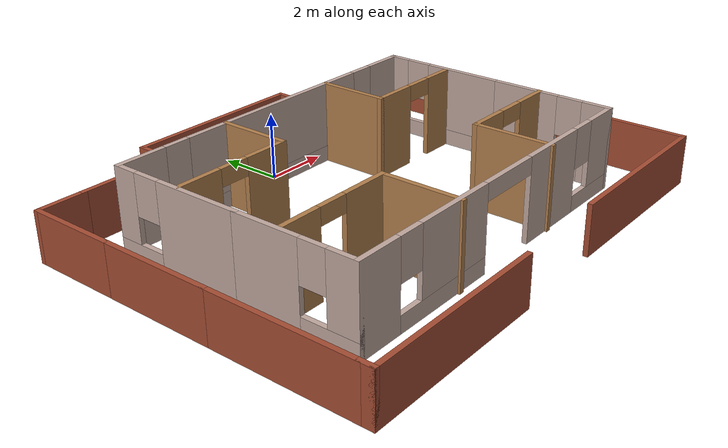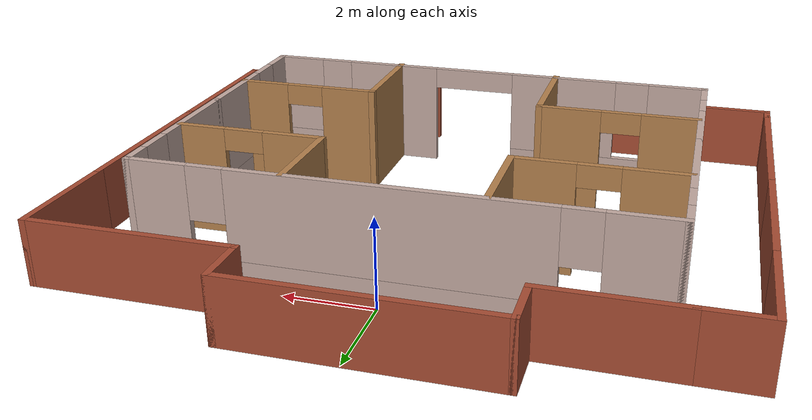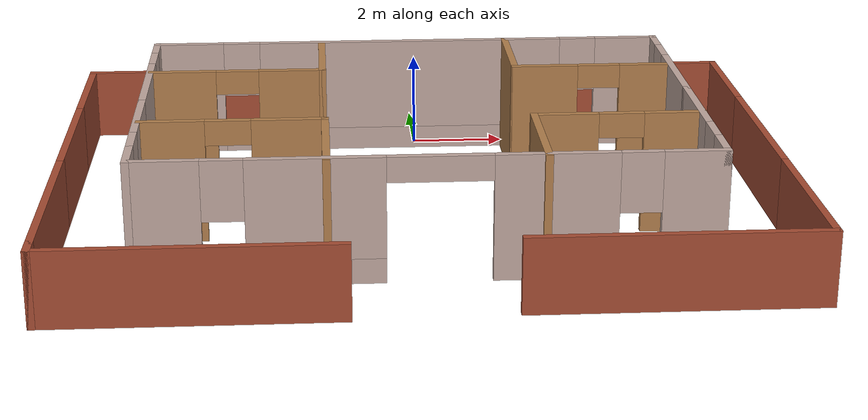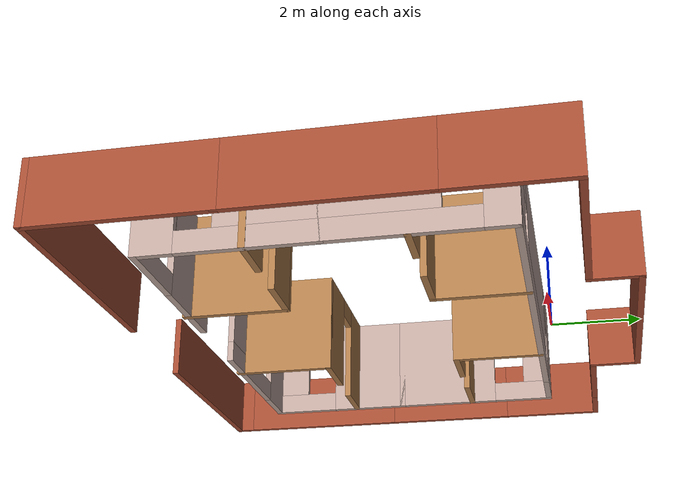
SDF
<?xml version='1.0'?>
<sdf version='1.6'>
  <model name='my_home'>
    <pose frame=''>-0.13 -3.875 0 0 -0 0</pose>
    <link name='Wall_0'>
      <pose frame=''>-5.59 1.475 0 0 -0 1.5708</pose>
      <visual name='Wall_0_Visual_0'>
        <pose frame=''>-0.7725 0 1.25 0 -0 0</pose>
        <geometry>
          <box>
            <size>2.705 0.15 2.5</size>
          </box>
        </geometry>
        <material>
          <script>
            <uri>file://media/materials/scripts/gazebo.material</uri>
            <name>Gazebo/Grey</name>
          </script>
          <ambient>0.760784 0.662745 0.627451 1</ambient>
        </material>
        <meta>
          <layer>0</layer>
        </meta>
      </visual>
      <collision name='Wall_0_Collision_0'>
        <geometry>
          <box>
            <size>2.705 0.15 2.5</size>
          </box>
        </geometry>
        <pose frame=''>-0.7725 0 1.25 0 -0 0</pose>
      </collision>
      <visual name='Wall_0_Visual_1'>
        <pose frame=''>1.3525 0 0.25 0 -0 0</pose>
        <geometry>
          <box>
            <size>1.545 0.15 0.5</size>
          </box>
        </geometry>
        <material>
          <script>
            <uri>file://media/materials/scripts/gazebo.material</uri>
            <name>Gazebo/Grey</name>
          </script>
          <ambient>0.760784 0.662745 0.627451 1</ambient>
        </material>
        <meta>
          <layer>0</layer>
        </meta>
      </visual>
      <collision name='Wall_0_Collision_1'>
        <geometry>
          <box>
            <size>1.545 0.15 0.5</size>
          </box>
        </geometry>
        <pose frame=''>1.3525 0 0.25 0 -0 0</pose>
      </collision>
      <visual name='Wall_0_Visual_2'>
        <pose frame=''>1.7525 0 1.5 0 -0 0</pose>
        <geometry>
          <box>
            <size>0.745 0.15 2</size>
          </box>
        </geometry>
        <material>
          <script>
            <uri>file://media/materials/scripts/gazebo.material</uri>
            <name>Gazebo/Grey</name>
          </script>
          <ambient>0.760784 0.662745 0.627451 1</ambient>
        </material>
        <meta>
          <layer>0</layer>
        </meta>
      </visual>
      <collision name='Wall_0_Collision_2'>
        <geometry>
          <box>
            <size>0.745 0.15 2</size>
          </box>
        </geometry>
        <pose frame=''>1.7525 0 1.5 0 -0 0</pose>
      </collision>
      <visual name='Wall_0_Visual_3'>
        <pose frame=''>0.98 0 1.9 0 -0 0</pose>
        <geometry>
          <box>
            <size>0.8 0.15 1.2</size>
          </box>
        </geometry>
        <material>
          <script>
            <uri>file://media/materials/scripts/gazebo.material</uri>
            <name>Gazebo/Grey</name>
          </script>
          <ambient>0.760784 0.662745 0.627451 1</ambient>
        </material>
        <meta>
          <layer>0</layer>
        </meta>
      </visual>
      <collision name='Wall_0_Collision_3'>
        <geometry>
          <box>
            <size>0.8 0.15 1.2</size>
          </box>
        </geometry>
        <pose frame=''>0.98 0 1.9 0 -0 0</pose>
      </collision>
    </link>
    <link name='Wall_1'>
      <pose frame=''>-0.04 3.525 0 0 -0 0</pose>
      <visual name='Wall_1_Visual_0'>
        <pose frame=''>-4.8575 0 1.25 0 -0 0</pose>
        <geometry>
          <box>
            <size>1.535 0.15 2.5</size>
          </box>
        </geometry>
        <material>
          <script>
            <uri>file://media/materials/scripts/gazebo.material</uri>
            <name>Gazebo/Grey</name>
          </script>
          <ambient>0.760784 0.662745 0.627451 1</ambient>
        </material>
        <meta>
          <layer>0</layer>
        </meta>
      </visual>
      <collision name='Wall_1_Collision_0'>
        <geometry>
          <box>
            <size>1.535 0.15 2.5</size>
          </box>
        </geometry>
        <pose frame=''>-4.8575 0 1.25 0 -0 0</pose>
      </collision>
      <visual name='Wall_1_Visual_1'>
        <pose frame=''>0.7675 0 0.25 0 -0 0</pose>
        <geometry>
          <box>
            <size>9.715 0.15 0.5</size>
          </box>
        </geometry>
        <material>
          <script>
            <uri>file://media/materials/scripts/gazebo.material</uri>
            <name>Gazebo/Grey</name>
          </script>
          <ambient>0.760784 0.662745 0.627451 1</ambient>
        </material>
        <meta>
          <layer>0</layer>
        </meta>
      </visual>
      <collision name='Wall_1_Collision_1'>
        <geometry>
          <box>
            <size>9.715 0.15 0.5</size>
          </box>
        </geometry>
        <pose frame=''>0.7675 0 0.25 0 -0 0</pose>
      </collision>
      <visual name='Wall_1_Visual_2'>
        <pose frame=''>0.07 0 1.5 0 -0 0</pose>
        <geometry>
          <box>
            <size>6.72 0.15 2</size>
          </box>
        </geometry>
        <material>
          <script>
            <uri>file://media/materials/scripts/gazebo.material</uri>
            <name>Gazebo/Grey</name>
          </script>
          <ambient>0.760784 0.662745 0.627451 1</ambient>
        </material>
        <meta>
          <layer>0</layer>
        </meta>
      </visual>
      <collision name='Wall_1_Collision_2'>
        <geometry>
          <box>
            <size>6.72 0.15 2</size>
          </box>
        </geometry>
        <pose frame=''>0.07 0 1.5 0 -0 0</pose>
      </collision>
      <visual name='Wall_1_Visual_3'>
        <pose frame=''>4.9275 0 1.5 0 -0 0</pose>
        <geometry>
          <box>
            <size>1.395 0.15 2</size>
          </box>
        </geometry>
        <material>
          <script>
            <uri>file://media/materials/scripts/gazebo.material</uri>
            <name>Gazebo/Grey</name>
          </script>
          <ambient>0.760784 0.662745 0.627451 1</ambient>
        </material>
        <meta>
          <layer>0</layer>
        </meta>
      </visual>
      <collision name='Wall_1_Collision_3'>
        <geometry>
          <box>
            <size>1.395 0.15 2</size>
          </box>
        </geometry>
        <pose frame=''>4.9275 0 1.5 0 -0 0</pose>
      </collision>
      <visual name='Wall_1_Visual_4'>
        <pose frame=''>-3.69 0 1.9 0 -0 0</pose>
        <geometry>
          <box>
            <size>0.8 0.15 1.2</size>
          </box>
        </geometry>
        <material>
          <script>
            <uri>file://media/materials/scripts/gazebo.material</uri>
            <name>Gazebo/Grey</name>
          </script>
          <ambient>0.760784 0.662745 0.627451 1</ambient>
        </material>
        <meta>
          <layer>0</layer>
        </meta>
      </visual>
      <collision name='Wall_1_Collision_4'>
        <geometry>
          <box>
            <size>0.8 0.15 1.2</size>
          </box>
        </geometry>
        <pose frame=''>-3.69 0 1.9 0 -0 0</pose>
      </collision>
      <visual name='Wall_1_Visual_5'>
        <pose frame=''>3.83 0 1.9 0 -0 0</pose>
        <geometry>
          <box>
            <size>0.8 0.15 1.2</size>
          </box>
        </geometry>
        <material>
          <script>
            <uri>file://media/materials/scripts/gazebo.material</uri>
            <name>Gazebo/Grey</name>
          </script>
          <ambient>0.760784 0.662745 0.627451 1</ambient>
        </material>
        <meta>
          <layer>0</layer>
        </meta>
      </visual>
      <collision name='Wall_1_Collision_5'>
        <geometry>
          <box>
            <size>0.8 0.15 1.2</size>
          </box>
        </geometry>
        <pose frame=''>3.83 0 1.9 0 -0 0</pose>
      </collision>
    </link>
    <link name='Wall_12'>
      <collision name='Wall_12_Collision'>
        <geometry>
          <box>
            <size>2.5 0.15 2.5</size>
          </box>
        </geometry>
        <pose frame=''>0 0 1.25 0 -0 0</pose>
      </collision>
      <visual name='Wall_12_Visual'>
        <pose frame=''>0 0 1.25 0 -0 0</pose>
        <geometry>
          <box>
            <size>2.5 0.15 2.5</size>
          </box>
        </geometry>
        <material>
          <script>
            <uri>file://media/materials/scripts/gazebo.material</uri>
            <name>Gazebo/Wood</name>
          </script>
          <ambient>1 1 1 1</ambient>
        </material>
        <meta>
          <layer>0</layer>
        </meta>
      </visual>
      <pose frame=''>2.17 -3.07 0 0 0 -1.5708</pose>
    </link>
    <link name='Wall_14'>
      <pose frame=''>3.845 -1.895 0 0 -0 0</pose>
      <visual name='Wall_14_Visual_0'>
        <pose frame=''>-1.0725 0 1.25 0 -0 0</pose>
        <geometry>
          <box>
            <size>1.355 0.15 2.5</size>
          </box>
        </geometry>
        <material>
          <script>
            <uri>file://media/materials/scripts/gazebo.material</uri>
            <name>Gazebo/Wood</name>
          </script>
          <ambient>1 1 1 1</ambient>
        </material>
        <meta>
          <layer>0</layer>
        </meta>
      </visual>
      <collision name='Wall_14_Collision_0'>
        <geometry>
          <box>
            <size>1.355 0.15 2.5</size>
          </box>
        </geometry>
        <pose frame=''>-1.0725 0 1.25 0 -0 0</pose>
      </collision>
      <visual name='Wall_14_Visual_1'>
        <pose frame=''>1.1275 0 1.25 0 -0 0</pose>
        <geometry>
          <box>
            <size>1.245 0.15 2.5</size>
          </box>
        </geometry>
        <material>
          <script>
            <uri>file://media/materials/scripts/gazebo.material</uri>
            <name>Gazebo/Wood</name>
          </script>
          <ambient>1 1 1 1</ambient>
        </material>
        <meta>
          <layer>0</layer>
        </meta>
      </visual>
      <collision name='Wall_14_Collision_1'>
        <geometry>
          <box>
            <size>1.245 0.15 2.5</size>
          </box>
        </geometry>
        <pose frame=''>1.1275 0 1.25 0 -0 0</pose>
      </collision>
      <visual name='Wall_14_Visual_2'>
        <pose frame=''>0.055 0 2.25 0 -0 0</pose>
        <geometry>
          <box>
            <size>0.9 0.15 0.5</size>
          </box>
        </geometry>
        <material>
          <script>
            <uri>file://media/materials/scripts/gazebo.material</uri>
            <name>Gazebo/Wood</name>
          </script>
          <ambient>1 1 1 1</ambient>
        </material>
        <meta>
          <layer>0</layer>
        </meta>
      </visual>
      <collision name='Wall_14_Collision_2'>
        <geometry>
          <box>
            <size>0.9 0.15 0.5</size>
          </box>
        </geometry>
        <pose frame=''>0.055 0 2.25 0 -0 0</pose>
      </collision>
    </link>
    <link name='Wall_2'>
      <pose frame=''>5.51 1.6 0 0 0 -1.5708</pose>
      <visual name='Wall_2_Visual_0'>
        <pose frame=''>-1.6425 0 1.25 0 -0 0</pose>
        <geometry>
          <box>
            <size>0.715 0.15 2.5</size>
          </box>
        </geometry>
        <material>
          <script>
            <uri>file://media/materials/scripts/gazebo.material</uri>
            <name>Gazebo/Grey</name>
          </script>
          <ambient>0.760784 0.662745 0.627451 1</ambient>
        </material>
        <meta>
          <layer>0</layer>
        </meta>
      </visual>
      <collision name='Wall_2_Collision_0'>
        <geometry>
          <box>
            <size>0.715 0.15 2.5</size>
          </box>
        </geometry>
        <pose frame=''>-1.6425 0 1.25 0 -0 0</pose>
      </collision>
      <visual name='Wall_2_Visual_1'>
        <pose frame=''>0.3575 0 0.25 0 -0 0</pose>
        <geometry>
          <box>
            <size>3.285 0.15 0.5</size>
          </box>
        </geometry>
        <material>
          <script>
            <uri>file://media/materials/scripts/gazebo.material</uri>
            <name>Gazebo/Grey</name>
          </script>
          <ambient>0.760784 0.662745 0.627451 1</ambient>
        </material>
        <meta>
          <layer>0</layer>
        </meta>
      </visual>
      <collision name='Wall_2_Collision_1'>
        <geometry>
          <box>
            <size>3.285 0.15 0.5</size>
          </box>
        </geometry>
        <pose frame=''>0.3575 0 0.25 0 -0 0</pose>
      </collision>
      <visual name='Wall_2_Visual_2'>
        <pose frame=''>0.7575 0 1.5 0 -0 0</pose>
        <geometry>
          <box>
            <size>2.485 0.15 2</size>
          </box>
        </geometry>
        <material>
          <script>
            <uri>file://media/materials/scripts/gazebo.material</uri>
            <name>Gazebo/Grey</name>
          </script>
          <ambient>0.760784 0.662745 0.627451 1</ambient>
        </material>
        <meta>
          <layer>0</layer>
        </meta>
      </visual>
      <collision name='Wall_2_Collision_2'>
        <geometry>
          <box>
            <size>2.485 0.15 2</size>
          </box>
        </geometry>
        <pose frame=''>0.7575 0 1.5 0 -0 0</pose>
      </collision>
      <visual name='Wall_2_Visual_3'>
        <pose frame=''>-0.885 0 1.9 0 -0 0</pose>
        <geometry>
          <box>
            <size>0.8 0.15 1.2</size>
          </box>
        </geometry>
        <material>
          <script>
            <uri>file://media/materials/scripts/gazebo.material</uri>
            <name>Gazebo/Grey</name>
          </script>
          <ambient>0.760784 0.662745 0.627451 1</ambient>
        </material>
        <meta>
          <layer>0</layer>
        </meta>
      </visual>
      <collision name='Wall_2_Collision_3'>
        <geometry>
          <box>
            <size>0.8 0.15 1.2</size>
          </box>
        </geometry>
        <pose frame=''>-0.885 0 1.9 0 -0 0</pose>
      </collision>
    </link>
    <link name='Wall_20'>
      <pose frame=''>-3.75 1.405 0 0 -0 0</pose>
      <visual name='Wall_20_Visual_0'>
        <pose frame=''>-1.1625 0 1.25 0 -0 0</pose>
        <geometry>
          <box>
            <size>1.425 0.15 2.5</size>
          </box>
        </geometry>
        <material>
          <script>
            <uri>file://media/materials/scripts/gazebo.material</uri>
            <name>Gazebo/Wood</name>
          </script>
          <ambient>1 1 1 1</ambient>
        </material>
        <meta>
          <layer>0</layer>
        </meta>
      </visual>
      <collision name='Wall_20_Collision_0'>
        <geometry>
          <box>
            <size>1.425 0.15 2.5</size>
          </box>
        </geometry>
        <pose frame=''>-1.1625 0 1.25 0 -0 0</pose>
      </collision>
      <visual name='Wall_20_Visual_1'>
        <pose frame=''>1.1625 0 1.25 0 -0 0</pose>
        <geometry>
          <box>
            <size>1.425 0.15 2.5</size>
          </box>
        </geometry>
        <material>
          <script>
            <uri>file://media/materials/scripts/gazebo.material</uri>
            <name>Gazebo/Wood</name>
          </script>
          <ambient>1 1 1 1</ambient>
        </material>
        <meta>
          <layer>0</layer>
        </meta>
      </visual>
      <collision name='Wall_20_Collision_1'>
        <geometry>
          <box>
            <size>1.425 0.15 2.5</size>
          </box>
        </geometry>
        <pose frame=''>1.1625 0 1.25 0 -0 0</pose>
      </collision>
      <visual name='Wall_20_Visual_2'>
        <pose frame=''>0 0 2.25 0 -0 0</pose>
        <geometry>
          <box>
            <size>0.9 0.15 0.5</size>
          </box>
        </geometry>
        <material>
          <script>
            <uri>file://media/materials/scripts/gazebo.material</uri>
            <name>Gazebo/Wood</name>
          </script>
          <ambient>1 1 1 1</ambient>
        </material>
        <meta>
          <layer>0</layer>
        </meta>
      </visual>
      <collision name='Wall_20_Collision_2'>
        <geometry>
          <box>
            <size>0.9 0.15 0.5</size>
          </box>
        </geometry>
        <pose frame=''>0 0 2.25 0 -0 0</pose>
      </collision>
    </link>
    <link name='Wall_22'>
      <collision name='Wall_22_Collision'>
        <geometry>
          <box>
            <size>2.25 0.15 2.5</size>
          </box>
        </geometry>
        <pose frame=''>0 0 1.25 0 -0 0</pose>
      </collision>
      <visual name='Wall_22_Visual'>
        <pose frame=''>0 0 1.25 0 -0 0</pose>
        <geometry>
          <box>
            <size>2.25 0.15 2.5</size>
          </box>
        </geometry>
        <material>
          <script>
            <uri>file://media/materials/scripts/gazebo.material</uri>
            <name>Gazebo/Wood</name>
          </script>
          <ambient>1 1 1 1</ambient>
        </material>
        <meta>
          <layer>0</layer>
        </meta>
      </visual>
      <pose frame=''>-1.95 2.455 0 0 -0 1.5708</pose>
    </link>
    <link name='Wall_27'>
      <collision name='Wall_27_Collision'>
        <geometry>
          <box>
            <size>2.25 0.15 2.5</size>
          </box>
        </geometry>
        <pose frame=''>0 0 1.25 0 -0 0</pose>
      </collision>
      <visual name='Wall_27_Visual'>
        <pose frame=''>0 0 1.25 0 -0 0</pose>
        <geometry>
          <box>
            <size>2.25 0.15 2.5</size>
          </box>
        </geometry>
        <material>
          <script>
            <uri>file://media/materials/scripts/gazebo.material</uri>
            <name>Gazebo/Wood</name>
          </script>
          <ambient>1 1 1 1</ambient>
        </material>
        <meta>
          <layer>0</layer>
        </meta>
      </visual>
      <pose frame=''>2.15 2.455 0 0 -0 1.5708</pose>
    </link>
    <link name='Wall_29'>
      <pose frame=''>3.825 1.405 0 0 -0 0</pose>
      <visual name='Wall_29_Visual_0'>
        <pose frame=''>-1.0375 0 1.25 0 -0 0</pose>
        <geometry>
          <box>
            <size>1.425 0.15 2.5</size>
          </box>
        </geometry>
        <material>
          <script>
            <uri>file://media/materials/scripts/gazebo.material</uri>
            <name>Gazebo/Wood</name>
          </script>
          <ambient>1 1 1 1</ambient>
        </material>
        <meta>
          <layer>0</layer>
        </meta>
      </visual>
      <collision name='Wall_29_Collision_0'>
        <geometry>
          <box>
            <size>1.425 0.15 2.5</size>
          </box>
        </geometry>
        <pose frame=''>-1.0375 0 1.25 0 -0 0</pose>
      </collision>
      <visual name='Wall_29_Visual_1'>
        <pose frame=''>1.1625 0 1.25 0 -0 0</pose>
        <geometry>
          <box>
            <size>1.175 0.15 2.5</size>
          </box>
        </geometry>
        <material>
          <script>
            <uri>file://media/materials/scripts/gazebo.material</uri>
            <name>Gazebo/Wood</name>
          </script>
          <ambient>1 1 1 1</ambient>
        </material>
        <meta>
          <layer>0</layer>
        </meta>
      </visual>
      <collision name='Wall_29_Collision_1'>
        <geometry>
          <box>
            <size>1.175 0.15 2.5</size>
          </box>
        </geometry>
        <pose frame=''>1.1625 0 1.25 0 -0 0</pose>
      </collision>
      <visual name='Wall_29_Visual_2'>
        <pose frame=''>0.125 0 2.25 0 -0 0</pose>
        <geometry>
          <box>
            <size>0.9 0.15 0.5</size>
          </box>
        </geometry>
        <material>
          <script>
            <uri>file://media/materials/scripts/gazebo.material</uri>
            <name>Gazebo/Wood</name>
          </script>
          <ambient>1 1 1 1</ambient>
        </material>
        <meta>
          <layer>0</layer>
        </meta>
      </visual>
      <collision name='Wall_29_Collision_2'>
        <geometry>
          <box>
            <size>0.9 0.15 0.5</size>
          </box>
        </geometry>
        <pose frame=''>0.125 0 2.25 0 -0 0</pose>
      </collision>
    </link>
    <link name='Wall_31'>
      <collision name='Wall_31_Collision'>
        <geometry>
          <box>
            <size>3 0.15 1.5</size>
          </box>
        </geometry>
        <pose frame=''>0 0 0.75 0 -0 0</pose>
      </collision>
      <visual name='Wall_31_Visual'>
        <pose frame=''>0 0 0.75 0 -0 0</pose>
        <geometry>
          <box>
            <size>3 0.15 1.5</size>
          </box>
        </geometry>
        <material>
          <script>
            <uri>file://media/materials/scripts/gazebo.material</uri>
            <name>Gazebo/Bricks</name>
          </script>
          <ambient>1 1 1 1</ambient>
        </material>
        <meta>
          <layer>0</layer>
        </meta>
      </visual>
      <pose frame=''>-4.425 4.775 0 0 -0 0</pose>
    </link>
    <link name='Wall_32'>
      <collision name='Wall_32_Collision'>
        <geometry>
          <box>
            <size>1.25 0.15 1.5</size>
          </box>
        </geometry>
        <pose frame=''>0 0 0.75 0 -0 0</pose>
      </collision>
      <visual name='Wall_32_Visual'>
        <pose frame=''>0 0 0.75 0 -0 0</pose>
        <geometry>
          <box>
            <size>1.25 0.15 1.5</size>
          </box>
        </geometry>
        <material>
          <script>
            <uri>file://media/materials/scripts/gazebo.material</uri>
            <name>Gazebo/Bricks</name>
          </script>
          <ambient>1 1 1 1</ambient>
        </material>
        <meta>
          <layer>0</layer>
        </meta>
      </visual>
      <pose frame=''>-3 5.325 0 0 -0 1.5708</pose>
    </link>
    <link name='Wall_33'>
      <collision name='Wall_33_Collision'>
        <geometry>
          <box>
            <size>5.75 0.15 1.5</size>
          </box>
        </geometry>
        <pose frame=''>0 0 0.75 0 -0 0</pose>
      </collision>
      <visual name='Wall_33_Visual'>
        <pose frame=''>0 0 0.75 0 -0 0</pose>
        <geometry>
          <box>
            <size>5.75 0.15 1.5</size>
          </box>
        </geometry>
        <material>
          <script>
            <uri>file://media/materials/scripts/gazebo.material</uri>
            <name>Gazebo/Bricks</name>
          </script>
          <ambient>1 1 1 1</ambient>
        </material>
        <meta>
          <layer>0</layer>
        </meta>
      </visual>
      <pose frame=''>-0.2 5.875 0 0 -0 0</pose>
    </link>
    <link name='Wall_34'>
      <collision name='Wall_34_Collision'>
        <geometry>
          <box>
            <size>1.25 0.15 1.5</size>
          </box>
        </geometry>
        <pose frame=''>0 0 0.75 0 -0 0</pose>
      </collision>
      <visual name='Wall_34_Visual'>
        <pose frame=''>0 0 0.75 0 -0 0</pose>
        <geometry>
          <box>
            <size>1.25 0.15 1.5</size>
          </box>
        </geometry>
        <material>
          <script>
            <uri>file://media/materials/scripts/gazebo.material</uri>
            <name>Gazebo/Bricks</name>
          </script>
          <ambient>1 1 1 1</ambient>
        </material>
        <meta>
          <layer>0</layer>
        </meta>
      </visual>
      <pose frame=''>2.6 5.325 0 0 0 -1.5708</pose>
    </link>
    <link name='Wall_35'>
      <collision name='Wall_35_Collision'>
        <geometry>
          <box>
            <size>4.75 0.15 1.5</size>
          </box>
        </geometry>
        <pose frame=''>0 0 0.75 0 -0 0</pose>
      </collision>
      <visual name='Wall_35_Visual'>
        <pose frame=''>0 0 0.75 0 -0 0</pose>
        <geometry>
          <box>
            <size>4.75 0.15 1.5</size>
          </box>
        </geometry>
        <material>
          <script>
            <uri>file://media/materials/scripts/gazebo.material</uri>
            <name>Gazebo/Bricks</name>
          </script>
          <ambient>1 1 1 1</ambient>
        </material>
        <meta>
          <layer>0</layer>
        </meta>
      </visual>
      <pose frame=''>4.9 4.775 0 0 -0 0</pose>
    </link>
    <link name='Wall_36'>
      <collision name='Wall_36_Collision'>
        <geometry>
          <box>
            <size>2.75 0.15 1.5</size>
          </box>
        </geometry>
        <pose frame=''>0 0 0.75 0 -0 0</pose>
      </collision>
      <visual name='Wall_36_Visual'>
        <pose frame=''>0 0 0.75 0 -0 0</pose>
        <geometry>
          <box>
            <size>2.75 0.15 1.5</size>
          </box>
        </geometry>
        <material>
          <script>
            <uri>file://media/materials/scripts/gazebo.material</uri>
            <name>Gazebo/Bricks</name>
          </script>
          <ambient>1 1 1 1</ambient>
        </material>
        <meta>
          <layer>0</layer>
        </meta>
      </visual>
      <pose frame=''>7.2 3.475 0 0 0 -1.5708</pose>
    </link>
    <link name='Wall_38'>
      <collision name='Wall_38_Collision'>
        <geometry>
          <box>
            <size>1.5 0.15 1.5</size>
          </box>
        </geometry>
        <pose frame=''>0 0 0.75 0 -0 0</pose>
      </collision>
      <visual name='Wall_38_Visual'>
        <pose frame=''>0 0 0.75 0 -0 0</pose>
        <geometry>
          <box>
            <size>1.5 0.15 1.5</size>
          </box>
        </geometry>
        <material>
          <script>
            <uri>file://media/materials/scripts/gazebo.material</uri>
            <name>Gazebo/Bricks</name>
          </script>
          <ambient>1 1 1 1</ambient>
        </material>
        <meta>
          <layer>0</layer>
        </meta>
      </visual>
      <pose frame=''>-6.525 4.775 0 0 -0 3.14159</pose>
    </link>
    <link name='Wall_39'>
      <collision name='Wall_39_Collision'>
        <geometry>
          <box>
            <size>2.75 0.15 1.5</size>
          </box>
        </geometry>
        <pose frame=''>0 0 0.75 0 -0 0</pose>
      </collision>
      <visual name='Wall_39_Visual'>
        <pose frame=''>0 0 0.75 0 -0 0</pose>
        <geometry>
          <box>
            <size>2.75 0.15 1.5</size>
          </box>
        </geometry>
        <material>
          <script>
            <uri>file://media/materials/scripts/gazebo.material</uri>
            <name>Gazebo/Bricks</name>
          </script>
          <ambient>1 1 1 1</ambient>
        </material>
        <meta>
          <layer>0</layer>
        </meta>
      </visual>
      <pose frame=''>-7.2 3.475 0 0 0 -1.5708</pose>
    </link>
    <link name='Wall_4'>
      <pose frame=''>-5.59 -2.375 0 0 0 -1.5708</pose>
      <visual name='Wall_4_Visual_0'>
        <pose frame=''>-0.8625 0 1.25 0 -0 0</pose>
        <geometry>
          <box>
            <size>2.025 0.15 2.5</size>
          </box>
        </geometry>
        <material>
          <script>
            <uri>file://media/materials/scripts/gazebo.material</uri>
            <name>Gazebo/Grey</name>
          </script>
          <ambient>0.760784 0.662745 0.627451 1</ambient>
        </material>
        <meta>
          <layer>0</layer>
        </meta>
      </visual>
      <collision name='Wall_4_Collision_0'>
        <geometry>
          <box>
            <size>2.025 0.15 2.5</size>
          </box>
        </geometry>
        <pose frame=''>-0.8625 0 1.25 0 -0 0</pose>
      </collision>
      <visual name='Wall_4_Visual_1'>
        <pose frame=''>1.0125 0 0.25 0 -0 0</pose>
        <geometry>
          <box>
            <size>1.725 0.15 0.5</size>
          </box>
        </geometry>
        <material>
          <script>
            <uri>file://media/materials/scripts/gazebo.material</uri>
            <name>Gazebo/Grey</name>
          </script>
          <ambient>0.760784 0.662745 0.627451 1</ambient>
        </material>
        <meta>
          <layer>0</layer>
        </meta>
      </visual>
      <collision name='Wall_4_Collision_1'>
        <geometry>
          <box>
            <size>1.725 0.15 0.5</size>
          </box>
        </geometry>
        <pose frame=''>1.0125 0 0.25 0 -0 0</pose>
      </collision>
      <visual name='Wall_4_Visual_2'>
        <pose frame=''>1.4125 0 1.5 0 -0 0</pose>
        <geometry>
          <box>
            <size>0.925 0.15 2</size>
          </box>
        </geometry>
        <material>
          <script>
            <uri>file://media/materials/scripts/gazebo.material</uri>
            <name>Gazebo/Grey</name>
          </script>
          <ambient>0.760784 0.662745 0.627451 1</ambient>
        </material>
        <meta>
          <layer>0</layer>
        </meta>
      </visual>
      <collision name='Wall_4_Collision_2'>
        <geometry>
          <box>
            <size>0.925 0.15 2</size>
          </box>
        </geometry>
        <pose frame=''>1.4125 0 1.5 0 -0 0</pose>
      </collision>
      <visual name='Wall_4_Visual_3'>
        <pose frame=''>0.55 0 1.9 0 -0 0</pose>
        <geometry>
          <box>
            <size>0.8 0.15 1.2</size>
          </box>
        </geometry>
        <material>
          <script>
            <uri>file://media/materials/scripts/gazebo.material</uri>
            <name>Gazebo/Grey</name>
          </script>
          <ambient>0.760784 0.662745 0.627451 1</ambient>
        </material>
        <meta>
          <layer>0</layer>
        </meta>
      </visual>
      <collision name='Wall_4_Collision_3'>
        <geometry>
          <box>
            <size>0.8 0.15 1.2</size>
          </box>
        </geometry>
        <pose frame=''>0.55 0 1.9 0 -0 0</pose>
      </collision>
    </link>
    <link name='Wall_41'>
      <collision name='Wall_41_Collision'>
        <geometry>
          <box>
            <size>3.5 0.15 1.5</size>
          </box>
        </geometry>
        <pose frame=''>0 0 0.75 0 -0 0</pose>
      </collision>
      <visual name='Wall_41_Visual'>
        <pose frame=''>0 0 0.75 0 -0 0</pose>
        <geometry>
          <box>
            <size>3.5 0.15 1.5</size>
          </box>
        </geometry>
        <material>
          <script>
            <uri>file://media/materials/scripts/gazebo.material</uri>
            <name>Gazebo/Bricks</name>
          </script>
          <ambient>1 1 1 1</ambient>
        </material>
        <meta>
          <layer>0</layer>
        </meta>
      </visual>
      <pose frame=''>-7.2 0.5 0 0 0 -1.5708</pose>
    </link>
    <link name='Wall_43'>
      <collision name='Wall_43_Collision'>
        <geometry>
          <box>
            <size>4.5 0.15 1.5</size>
          </box>
        </geometry>
        <pose frame=''>0 0 0.75 0 -0 0</pose>
      </collision>
      <visual name='Wall_43_Visual'>
        <pose frame=''>0 0 0.75 0 -0 0</pose>
        <geometry>
          <box>
            <size>4.5 0.15 1.5</size>
          </box>
        </geometry>
        <material>
          <script>
            <uri>file://media/materials/scripts/gazebo.material</uri>
            <name>Gazebo/Bricks</name>
          </script>
          <ambient>1 1 1 1</ambient>
        </material>
        <meta>
          <layer>0</layer>
        </meta>
      </visual>
      <pose frame=''>-7.2 -3.35 0 0 0 -1.5708</pose>
    </link>
    <link name='Wall_47'>
      <collision name='Wall_47_Collision'>
        <geometry>
          <box>
            <size>5.75 0.15 1.5</size>
          </box>
        </geometry>
        <pose frame=''>0 0 0.75 0 -0 0</pose>
      </collision>
      <visual name='Wall_47_Visual'>
        <pose frame=''>0 0 0.75 0 -0 0</pose>
        <geometry>
          <box>
            <size>5.75 0.15 1.5</size>
          </box>
        </geometry>
        <material>
          <script>
            <uri>file://media/materials/scripts/gazebo.material</uri>
            <name>Gazebo/Bricks</name>
          </script>
          <ambient>1 1 1 1</ambient>
        </material>
        <meta>
          <layer>0</layer>
        </meta>
      </visual>
      <pose frame=''>-4.4 -5.875 0 0 -0 0</pose>
    </link>
    <link name='Wall_5'>
      <pose frame=''>-0.04 -4.175 0 0 -0 0</pose>
      <visual name='Wall_5_Visual_0'>
        <pose frame=''>-4.9175 0 1.25 0 -0 0</pose>
        <geometry>
          <box>
            <size>1.415 0.15 2.5</size>
          </box>
        </geometry>
        <material>
          <script>
            <uri>file://media/materials/scripts/gazebo.material</uri>
            <name>Gazebo/Grey</name>
          </script>
          <ambient>0.760784 0.662745 0.627451 1</ambient>
        </material>
        <meta>
          <layer>0</layer>
        </meta>
      </visual>
      <collision name='Wall_5_Collision_0'>
        <geometry>
          <box>
            <size>1.415 0.15 2.5</size>
          </box>
        </geometry>
        <pose frame=''>-4.9175 0 1.25 0 -0 0</pose>
      </collision>
      <visual name='Wall_5_Visual_1'>
        <pose frame=''>2.385 0 1.25 0 -0 0</pose>
        <geometry>
          <box>
            <size>2.35 0.15 2.5</size>
          </box>
        </geometry>
        <material>
          <script>
            <uri>file://media/materials/scripts/gazebo.material</uri>
            <name>Gazebo/Grey</name>
          </script>
          <ambient>0.760784 0.662745 0.627451 1</ambient>
        </material>
        <meta>
          <layer>0</layer>
        </meta>
      </visual>
      <collision name='Wall_5_Collision_1'>
        <geometry>
          <box>
            <size>2.35 0.15 2.5</size>
          </box>
        </geometry>
        <pose frame=''>2.385 0 1.25 0 -0 0</pose>
      </collision>
      <visual name='Wall_5_Visual_2'>
        <pose frame=''>-2.5 0 0.25 0 -0 0</pose>
        <geometry>
          <box>
            <size>3.42 0.15 0.5</size>
          </box>
        </geometry>
        <material>
          <script>
            <uri>file://media/materials/scripts/gazebo.material</uri>
            <name>Gazebo/Grey</name>
          </script>
          <ambient>0.760784 0.662745 0.627451 1</ambient>
        </material>
        <meta>
          <layer>0</layer>
        </meta>
      </visual>
      <collision name='Wall_5_Collision_2'>
        <geometry>
          <box>
            <size>3.42 0.15 0.5</size>
          </box>
        </geometry>
        <pose frame=''>-2.5 0 0.25 0 -0 0</pose>
      </collision>
      <visual name='Wall_5_Visual_3'>
        <pose frame=''>4.5925 0 0.25 0 -0 0</pose>
        <geometry>
          <box>
            <size>2.065 0.15 0.5</size>
          </box>
        </geometry>
        <material>
          <script>
            <uri>file://media/materials/scripts/gazebo.material</uri>
            <name>Gazebo/Grey</name>
          </script>
          <ambient>0.760784 0.662745 0.627451 1</ambient>
        </material>
        <meta>
          <layer>0</layer>
        </meta>
      </visual>
      <collision name='Wall_5_Collision_3'>
        <geometry>
          <box>
            <size>2.065 0.15 0.5</size>
          </box>
        </geometry>
        <pose frame=''>4.5925 0 0.25 0 -0 0</pose>
      </collision>
      <visual name='Wall_5_Visual_4'>
        <pose frame=''>-2.1 0 1.5 0 -0 0</pose>
        <geometry>
          <box>
            <size>2.62 0.15 2</size>
          </box>
        </geometry>
        <material>
          <script>
            <uri>file://media/materials/scripts/gazebo.material</uri>
            <name>Gazebo/Grey</name>
          </script>
          <ambient>0.760784 0.662745 0.627451 1</ambient>
        </material>
        <meta>
          <layer>0</layer>
        </meta>
      </visual>
      <collision name='Wall_5_Collision_4'>
        <geometry>
          <box>
            <size>2.62 0.15 2</size>
          </box>
        </geometry>
        <pose frame=''>-2.1 0 1.5 0 -0 0</pose>
      </collision>
      <visual name='Wall_5_Visual_5'>
        <pose frame=''>-2.1 0 1.5 0 -0 0</pose>
        <geometry>
          <box>
            <size>2.62 0.15 2</size>
          </box>
        </geometry>
        <material>
          <script>
            <uri>file://media/materials/scripts/gazebo.material</uri>
            <name>Gazebo/Grey</name>
          </script>
          <ambient>0.760784 0.662745 0.627451 1</ambient>
        </material>
        <meta>
          <layer>0</layer>
        </meta>
      </visual>
      <collision name='Wall_5_Collision_5'>
        <geometry>
          <box>
            <size>2.62 0.15 2</size>
          </box>
        </geometry>
        <pose frame=''>-2.1 0 1.5 0 -0 0</pose>
      </collision>
      <visual name='Wall_5_Visual_6'>
        <pose frame=''>4.9925 0 1.5 0 -0 0</pose>
        <geometry>
          <box>
            <size>1.265 0.15 2</size>
          </box>
        </geometry>
        <material>
          <script>
            <uri>file://media/materials/scripts/gazebo.material</uri>
            <name>Gazebo/Grey</name>
          </script>
          <ambient>0.760784 0.662745 0.627451 1</ambient>
        </material>
        <meta>
          <layer>0</layer>
        </meta>
      </visual>
      <collision name='Wall_5_Collision_6'>
        <geometry>
          <box>
            <size>1.265 0.15 2</size>
          </box>
        </geometry>
        <pose frame=''>4.9925 0 1.5 0 -0 0</pose>
      </collision>
      <visual name='Wall_5_Visual_7'>
        <pose frame=''>-3.81 0 1.9 0 -0 0</pose>
        <geometry>
          <box>
            <size>0.8 0.15 1.2</size>
          </box>
        </geometry>
        <material>
          <script>
            <uri>file://media/materials/scripts/gazebo.material</uri>
            <name>Gazebo/Grey</name>
          </script>
          <ambient>0.760784 0.662745 0.627451 1</ambient>
        </material>
        <meta>
          <layer>0</layer>
        </meta>
      </visual>
      <collision name='Wall_5_Collision_7'>
        <geometry>
          <box>
            <size>0.8 0.15 1.2</size>
          </box>
        </geometry>
        <pose frame=''>-3.81 0 1.9 0 -0 0</pose>
      </collision>
      <visual name='Wall_5_Visual_8'>
        <pose frame=''>3.96 0 1.9 0 -0 0</pose>
        <geometry>
          <box>
            <size>0.8 0.15 1.2</size>
          </box>
        </geometry>
        <material>
          <script>
            <uri>file://media/materials/scripts/gazebo.material</uri>
            <name>Gazebo/Grey</name>
          </script>
          <ambient>0.760784 0.662745 0.627451 1</ambient>
        </material>
        <meta>
          <layer>0</layer>
        </meta>
      </visual>
      <collision name='Wall_5_Collision_8'>
        <geometry>
          <box>
            <size>0.8 0.15 1.2</size>
          </box>
        </geometry>
        <pose frame=''>3.96 0 1.9 0 -0 0</pose>
      </collision>
      <visual name='Wall_5_Visual_9'>
        <pose frame=''>0.21 0 2.25 0 -0 0</pose>
        <geometry>
          <box>
            <size>2 0.15 0.5</size>
          </box>
        </geometry>
        <material>
          <script>
            <uri>file://media/materials/scripts/gazebo.material</uri>
            <name>Gazebo/Grey</name>
          </script>
          <ambient>0.760784 0.662745 0.627451 1</ambient>
        </material>
        <meta>
          <layer>0</layer>
        </meta>
      </visual>
      <collision name='Wall_5_Collision_9'>
        <geometry>
          <box>
            <size>2 0.15 0.5</size>
          </box>
        </geometry>
        <pose frame=''>0.21 0 2.25 0 -0 0</pose>
      </collision>
      <visual name='Wall_5_Visual_10'>
        <pose frame=''>0.21 0 2.25 0 -0 0</pose>
        <geometry>
          <box>
            <size>2 0.15 0.5</size>
          </box>
        </geometry>
        <material>
          <script>
            <uri>file://media/materials/scripts/gazebo.material</uri>
            <name>Gazebo/Grey</name>
          </script>
          <ambient>0.760784 0.662745 0.627451 1</ambient>
        </material>
        <meta>
          <layer>0</layer>
        </meta>
      </visual>
      <collision name='Wall_5_Collision_10'>
        <geometry>
          <box>
            <size>2 0.15 0.5</size>
          </box>
        </geometry>
        <pose frame=''>0.21 0 2.25 0 -0 0</pose>
      </collision>
    </link>
    <link name='Wall_50'>
      <collision name='Wall_50_Collision'>
        <geometry>
          <box>
            <size>4.25 0.15 1.5</size>
          </box>
        </geometry>
        <pose frame=''>0 0 0.75 0 -0 0</pose>
      </collision>
      <visual name='Wall_50_Visual'>
        <pose frame=''>0 0 0.75 0 -0 0</pose>
        <geometry>
          <box>
            <size>4.25 0.15 1.5</size>
          </box>
        </geometry>
        <material>
          <script>
            <uri>file://media/materials/scripts/gazebo.material</uri>
            <name>Gazebo/Bricks</name>
          </script>
          <ambient>1 1 1 1</ambient>
        </material>
        <meta>
          <layer>0</layer>
        </meta>
      </visual>
      <pose frame=''>7.2 0.125 0 0 0 -1.5708</pose>
    </link>
    <link name='Wall_52'>
      <collision name='Wall_52_Collision'>
        <geometry>
          <box>
            <size>4 0.15 1.5</size>
          </box>
        </geometry>
        <pose frame=''>0 0 0.75 0 -0 0</pose>
      </collision>
      <visual name='Wall_52_Visual'>
        <pose frame=''>0 0 0.75 0 -0 0</pose>
        <geometry>
          <box>
            <size>4 0.15 1.5</size>
          </box>
        </geometry>
        <material>
          <script>
            <uri>file://media/materials/scripts/gazebo.material</uri>
            <name>Gazebo/Bricks</name>
          </script>
          <ambient>1 1 1 1</ambient>
        </material>
        <meta>
          <layer>0</layer>
        </meta>
      </visual>
      <pose frame=''>7.2 -3.85 0 0 0 -1.5708</pose>
    </link>
    <link name='Wall_56'>
      <collision name='Wall_56_Collision'>
        <geometry>
          <box>
            <size>5.75 0.15 1.5</size>
          </box>
        </geometry>
        <pose frame=''>0 0 0.75 0 -0 0</pose>
      </collision>
      <visual name='Wall_56_Visual'>
        <pose frame=''>0 0 0.75 0 -0 0</pose>
        <geometry>
          <box>
            <size>5.75 0.15 1.5</size>
          </box>
        </geometry>
        <material>
          <script>
            <uri>file://media/materials/scripts/gazebo.material</uri>
            <name>Gazebo/Bricks</name>
          </script>
          <ambient>1 1 1 1</ambient>
        </material>
        <meta>
          <layer>0</layer>
        </meta>
      </visual>
      <pose frame=''>4.4 -5.775 0 0 -0 3.14159</pose>
    </link>
    <link name='Wall_58'>
      <collision name='Wall_58_Collision'>
        <geometry>
          <box>
            <size>0.5 0.15 1.5</size>
          </box>
        </geometry>
        <pose frame=''>0 0 0.75 0 -0 0</pose>
      </collision>
      <visual name='Wall_58_Visual'>
        <pose frame=''>0 0 0.75 0 -0 0</pose>
        <geometry>
          <box>
            <size>0.5 0.15 1.5</size>
          </box>
        </geometry>
        <material>
          <script>
            <uri>file://media/materials/scripts/gazebo.material</uri>
            <name>Gazebo/Bricks</name>
          </script>
          <ambient>1 1 1 1</ambient>
        </material>
        <meta>
          <layer>0</layer>
        </meta>
      </visual>
      <pose frame=''>-7.2 -5.7 0 0 0 -1.5708</pose>
    </link>
    <link name='Wall_6'>
      <pose frame=''>5.51 -2.25 0 0 -0 1.5708</pose>
      <visual name='Wall_6_Visual_0'>
        <pose frame=''>-1.5425 0 1.25 0 -0 0</pose>
        <geometry>
          <box>
            <size>0.915 0.15 2.5</size>
          </box>
        </geometry>
        <material>
          <script>
            <uri>file://media/materials/scripts/gazebo.material</uri>
            <name>Gazebo/Grey</name>
          </script>
          <ambient>0.760784 0.662745 0.627451 1</ambient>
        </material>
        <meta>
          <layer>0</layer>
        </meta>
      </visual>
      <collision name='Wall_6_Collision_0'>
        <geometry>
          <box>
            <size>0.915 0.15 2.5</size>
          </box>
        </geometry>
        <pose frame=''>-1.5425 0 1.25 0 -0 0</pose>
      </collision>
      <visual name='Wall_6_Visual_1'>
        <pose frame=''>0.4575 0 0.25 0 -0 0</pose>
        <geometry>
          <box>
            <size>3.085 0.15 0.5</size>
          </box>
        </geometry>
        <material>
          <script>
            <uri>file://media/materials/scripts/gazebo.material</uri>
            <name>Gazebo/Grey</name>
          </script>
          <ambient>0.760784 0.662745 0.627451 1</ambient>
        </material>
        <meta>
          <layer>0</layer>
        </meta>
      </visual>
      <collision name='Wall_6_Collision_1'>
        <geometry>
          <box>
            <size>3.085 0.15 0.5</size>
          </box>
        </geometry>
        <pose frame=''>0.4575 0 0.25 0 -0 0</pose>
      </collision>
      <visual name='Wall_6_Visual_2'>
        <pose frame=''>0.8575 0 1.5 0 -0 0</pose>
        <geometry>
          <box>
            <size>2.285 0.15 2</size>
          </box>
        </geometry>
        <material>
          <script>
            <uri>file://media/materials/scripts/gazebo.material</uri>
            <name>Gazebo/Grey</name>
          </script>
          <ambient>0.760784 0.662745 0.627451 1</ambient>
        </material>
        <meta>
          <layer>0</layer>
        </meta>
      </visual>
      <collision name='Wall_6_Collision_2'>
        <geometry>
          <box>
            <size>2.285 0.15 2</size>
          </box>
        </geometry>
        <pose frame=''>0.8575 0 1.5 0 -0 0</pose>
      </collision>
      <visual name='Wall_6_Visual_3'>
        <pose frame=''>-0.685 0 1.9 0 -0 0</pose>
        <geometry>
          <box>
            <size>0.8 0.15 1.2</size>
          </box>
        </geometry>
        <material>
          <script>
            <uri>file://media/materials/scripts/gazebo.material</uri>
            <name>Gazebo/Grey</name>
          </script>
          <ambient>0.760784 0.662745 0.627451 1</ambient>
        </material>
        <meta>
          <layer>0</layer>
        </meta>
      </visual>
      <collision name='Wall_6_Collision_3'>
        <geometry>
          <box>
            <size>0.8 0.15 1.2</size>
          </box>
        </geometry>
        <pose frame=''>-0.685 0 1.9 0 -0 0</pose>
      </collision>
    </link>
    <link name='Wall_8'>
      <pose frame=''>-3.73 -1.895 0 0 -0 0</pose>
      <visual name='Wall_8_Visual_0'>
        <pose frame=''>-1.2075 0 1.25 0 -0 0</pose>
        <geometry>
          <box>
            <size>1.335 0.15 2.5</size>
          </box>
        </geometry>
        <material>
          <script>
            <uri>file://media/materials/scripts/gazebo.material</uri>
            <name>Gazebo/Wood</name>
          </script>
          <ambient>1 1 1 1</ambient>
        </material>
        <meta>
          <layer>0</layer>
        </meta>
      </visual>
      <collision name='Wall_8_Collision_0'>
        <geometry>
          <box>
            <size>1.335 0.15 2.5</size>
          </box>
        </geometry>
        <pose frame=''>-1.2075 0 1.25 0 -0 0</pose>
      </collision>
      <visual name='Wall_8_Visual_1'>
        <pose frame=''>1.1175 0 1.25 0 -0 0</pose>
        <geometry>
          <box>
            <size>1.515 0.15 2.5</size>
          </box>
        </geometry>
        <material>
          <script>
            <uri>file://media/materials/scripts/gazebo.material</uri>
            <name>Gazebo/Wood</name>
          </script>
          <ambient>1 1 1 1</ambient>
        </material>
        <meta>
          <layer>0</layer>
        </meta>
      </visual>
      <collision name='Wall_8_Collision_1'>
        <geometry>
          <box>
            <size>1.515 0.15 2.5</size>
          </box>
        </geometry>
        <pose frame=''>1.1175 0 1.25 0 -0 0</pose>
      </collision>
      <visual name='Wall_8_Visual_2'>
        <pose frame=''>-0.09 0 2.25 0 -0 0</pose>
        <geometry>
          <box>
            <size>0.9 0.15 0.5</size>
          </box>
        </geometry>
        <material>
          <script>
            <uri>file://media/materials/scripts/gazebo.material</uri>
            <name>Gazebo/Wood</name>
          </script>
          <ambient>1 1 1 1</ambient>
        </material>
        <meta>
          <layer>0</layer>
        </meta>
      </visual>
      <collision name='Wall_8_Collision_2'>
        <geometry>
          <box>
            <size>0.9 0.15 0.5</size>
          </box>
        </geometry>
        <pose frame=''>-0.09 0 2.25 0 -0 0</pose>
      </collision>
    </link>
    <link name='Wall_9'>
      <collision name='Wall_9_Collision'>
        <geometry>
          <box>
            <size>2.5 0.15 2.5</size>
          </box>
        </geometry>
        <pose frame=''>0 0 1.25 0 -0 0</pose>
      </collision>
      <visual name='Wall_9_Visual'>
        <pose frame=''>0 0 1.25 0 -0 0</pose>
        <geometry>
          <box>
            <size>2.5 0.15 2.5</size>
          </box>
        </geometry>
        <material>
          <script>
            <uri>file://media/materials/scripts/gazebo.material</uri>
            <name>Gazebo/Wood</name>
          </script>
          <ambient>1 1 1 1</ambient>
        </material>
        <meta>
          <layer>0</layer>
        </meta>
      </visual>
      <pose frame=''>-1.93 -3.07 0 0 0 -1.5708</pose>
    </link>
    <static>1</static>
  </model>
</sdf>
